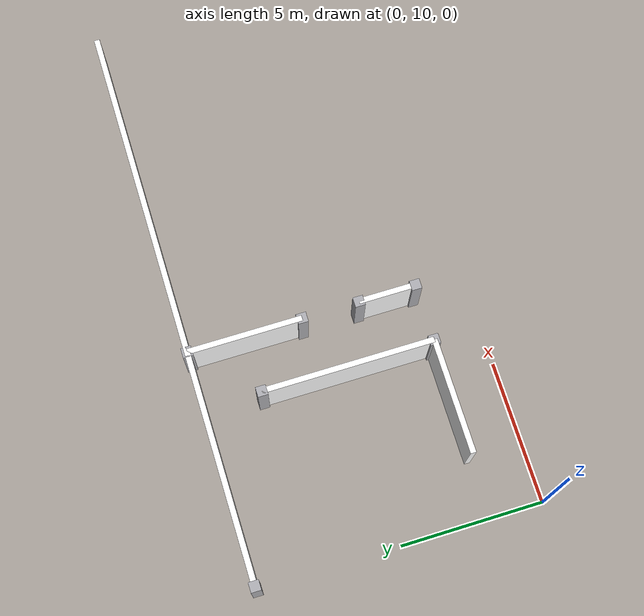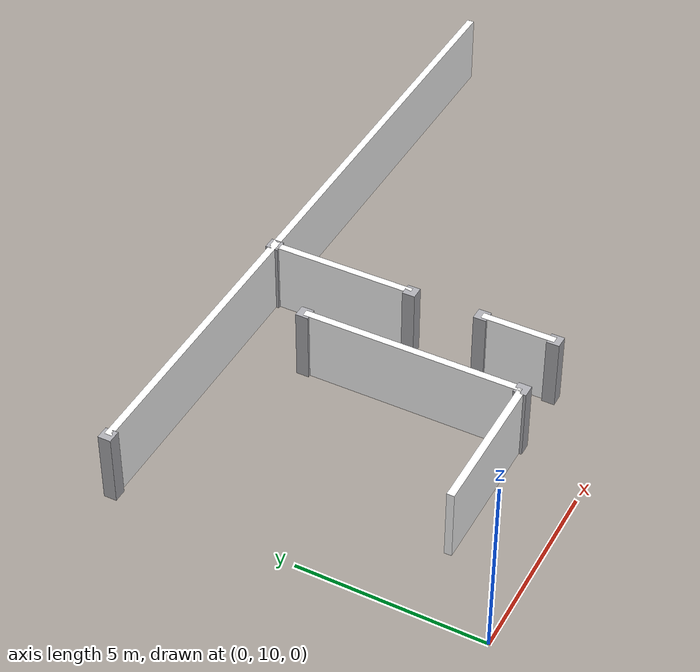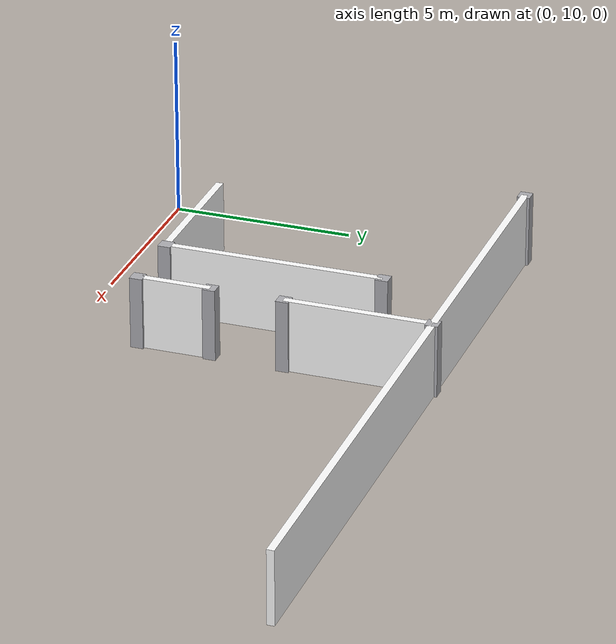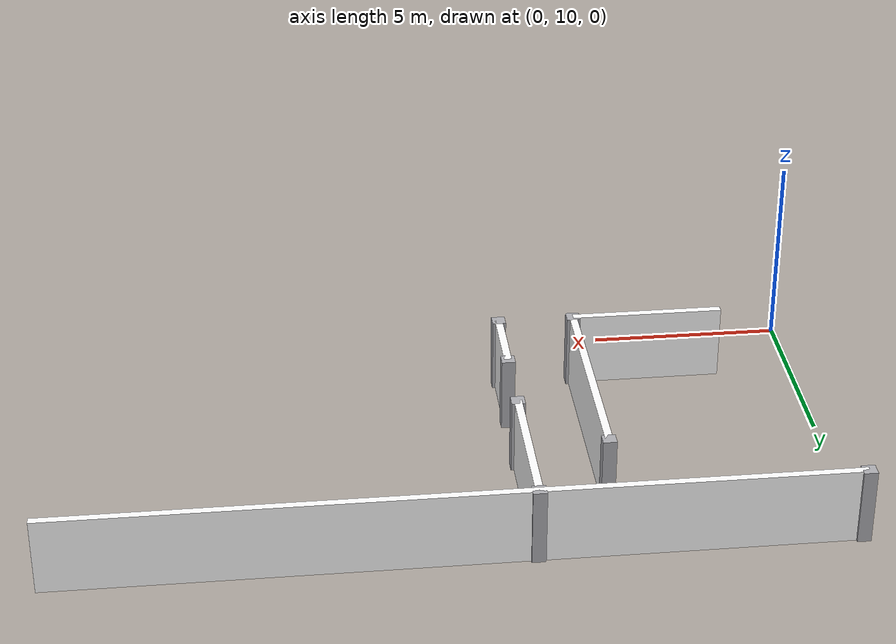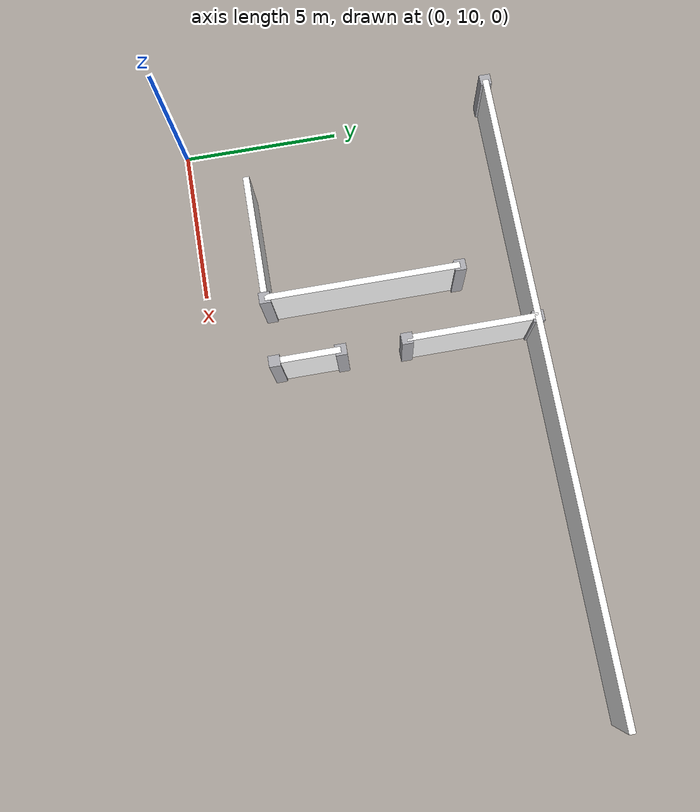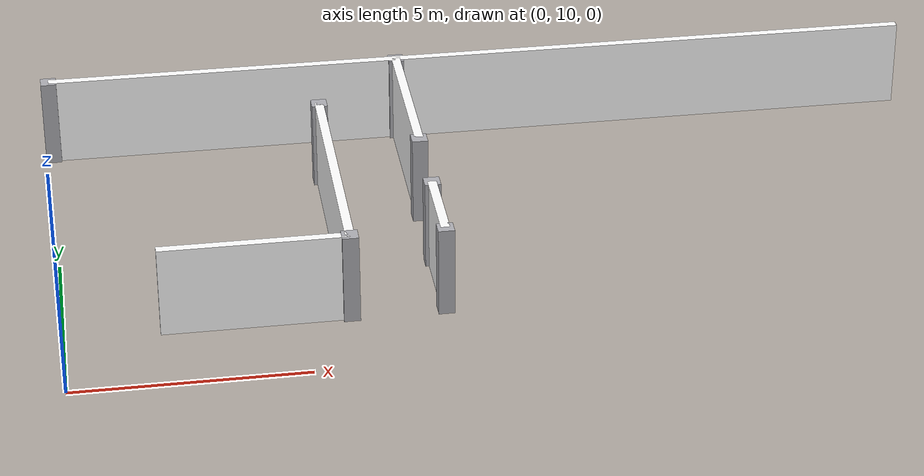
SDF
<sdf version="1.9">
 <world name="maze_world">
  <model name="wall_02">
   <static>true</static>
   <pose>10.0 20.0 1.0 0 0 0.0</pose>
   <link name="link">
    <collision name="collision"><geometry><box><size>20.0 0.2 2.0</size></box></geometry></collision>
    <visual name="visual">
     <geometry><box><size>20.0 0.2 2.0</size></box></geometry>
     <material>
      <ambient>1.0 1.0 1.0 1.0</ambient>
      <diffuse>1.0 1.0 1.0 1.0</diffuse>
      <specular>0.05 0.05 0.05 1.0</specular>
      <pbr>
       <metal>
        <albedo_map>model://bot_worlds/assets/textures/wall_tex_02.png</albedo_map>
        <roughness>0.95</roughness>
        <metalness>0.0</metalness>
       </metal>
      </pbr>
     </material>
    </visual>
   </link>
  </model>
  <model name="wall_12">
   <static>true</static>
   <pose>8.0 18.0 1.0 0 0 1.570796326795</pose>
   <link name="link">
    <collision name="collision"><geometry><box><size>4.0 0.2 2.0</size></box></geometry></collision>
    <visual name="visual">
     <geometry><box><size>4.0 0.2 2.0</size></box></geometry>
     <material>
      <ambient>1.0 1.0 1.0 1.0</ambient>
      <diffuse>1.0 1.0 1.0 1.0</diffuse>
      <specular>0.05 0.05 0.05 1.0</specular>
      <pbr>
       <metal>
        <albedo_map>model://bot_worlds/assets/textures/wall_tex_12.png</albedo_map>
        <roughness>0.95</roughness>
        <metalness>0.0</metalness>
       </metal>
      </pbr>
     </material>
    </visual>
   </link>
  </model>
  <model name="wall_13">
   <static>true</static>
   <pose>8.0 13.0 1.0 0 0 1.570796326795</pose>
   <link name="link">
    <collision name="collision"><geometry><box><size>2.0 0.2 2.0</size></box></geometry></collision>
    <visual name="visual">
     <geometry><box><size>2.0 0.2 2.0</size></box></geometry>
     <material>
      <ambient>1.0 1.0 1.0 1.0</ambient>
      <diffuse>1.0 1.0 1.0 1.0</diffuse>
      <specular>0.05 0.05 0.05 1.0</specular>
      <pbr>
       <metal>
        <albedo_map>model://bot_worlds/assets/textures/wall_tex_13.png</albedo_map>
        <roughness>0.95</roughness>
        <metalness>0.0</metalness>
       </metal>
      </pbr>
     </material>
    </visual>
   </link>
  </model>
  <model name="wall_15">
   <static>true</static>
   <pose>6.0 15.0 1.0 0 0 1.570796326795</pose>
   <link name="link">
    <collision name="collision"><geometry><box><size>6.0 0.2 2.0</size></box></geometry></collision>
    <visual name="visual">
     <geometry><box><size>6.0 0.2 2.0</size></box></geometry>
     <material>
      <ambient>1.0 1.0 1.0 1.0</ambient>
      <diffuse>1.0 1.0 1.0 1.0</diffuse>
      <specular>0.05 0.05 0.05 1.0</specular>
      <pbr>
       <metal>
        <albedo_map>model://bot_worlds/assets/textures/wall_tex_15.png</albedo_map>
        <roughness>0.95</roughness>
        <metalness>0.0</metalness>
       </metal>
      </pbr>
     </material>
    </visual>
   </link>
  </model>
  <model name="wall_16">
   <static>true</static>
   <pose>4.0 12.0 1.0 0 0 0.0</pose>
   <link name="link">
    <collision name="collision"><geometry><box><size>4.0 0.2 2.0</size></box></geometry></collision>
    <visual name="visual">
     <geometry><box><size>4.0 0.2 2.0</size></box></geometry>
     <material>
      <ambient>1.0 1.0 1.0 1.0</ambient>
      <diffuse>1.0 1.0 1.0 1.0</diffuse>
      <specular>0.05 0.05 0.05 1.0</specular>
      <pbr>
       <metal>
        <albedo_map>model://bot_worlds/assets/textures/wall_tex_16.png</albedo_map>
        <roughness>0.95</roughness>
        <metalness>0.0</metalness>
       </metal>
      </pbr>
     </material>
    </visual>
   </link>
  </model>
  <model name="post_002">
   <static>true</static>
   <pose>0.0 20.0 1.0 0 0 0</pose>
   <link name="link">
    <collision name="collision"><geometry><box><size>0.35 0.35 2.0</size></box></geometry></collision>
    <visual name="visual">
     <geometry><box><size>0.35 0.35 2.0</size></box></geometry>
     <material>
      <ambient>0.55 0.55 0.57 1.0</ambient>
      <diffuse>0.68 0.68 0.70 1.0</diffuse>
      <specular>0.03 0.03 0.03 1.0</specular>
      <pbr><metal><metalness>0.25</metalness><roughness>0.95</roughness></metal></pbr>
     </material>
    </visual>
   </link>
  </model>
  <model name="post_009">
   <static>true</static>
   <pose>6.0 12.0 1.0 0 0 0</pose>
   <link name="link">
    <collision name="collision"><geometry><box><size>0.35 0.35 2.0</size></box></geometry></collision>
    <visual name="visual">
     <geometry><box><size>0.35 0.35 2.0</size></box></geometry>
     <material>
      <ambient>0.55 0.55 0.57 1.0</ambient>
      <diffuse>0.68 0.68 0.70 1.0</diffuse>
      <specular>0.03 0.03 0.03 1.0</specular>
      <pbr><metal><metalness>0.25</metalness><roughness>0.95</roughness></metal></pbr>
     </material>
    </visual>
   </link>
  </model>
  <model name="post_010">
   <static>true</static>
   <pose>6.0 18.0 1.0 0 0 0</pose>
   <link name="link">
    <collision name="collision"><geometry><box><size>0.35 0.35 2.0</size></box></geometry></collision>
    <visual name="visual">
     <geometry><box><size>0.35 0.35 2.0</size></box></geometry>
     <material>
      <ambient>0.55 0.55 0.57 1.0</ambient>
      <diffuse>0.68 0.68 0.70 1.0</diffuse>
      <specular>0.03 0.03 0.03 1.0</specular>
      <pbr><metal><metalness>0.25</metalness><roughness>0.95</roughness></metal></pbr>
     </material>
    </visual>
   </link>
  </model>
  <model name="post_011">
   <static>true</static>
   <pose>8.0 12.0 1.0 0 0 0</pose>
   <link name="link">
    <collision name="collision"><geometry><box><size>0.35 0.35 2.0</size></box></geometry></collision>
    <visual name="visual">
     <geometry><box><size>0.35 0.35 2.0</size></box></geometry>
     <material>
      <ambient>0.55 0.55 0.57 1.0</ambient>
      <diffuse>0.68 0.68 0.70 1.0</diffuse>
      <specular>0.03 0.03 0.03 1.0</specular>
      <pbr><metal><metalness>0.25</metalness><roughness>0.95</roughness></metal></pbr>
     </material>
    </visual>
   </link>
  </model>
  <model name="post_012">
   <static>true</static>
   <pose>8.0 14.0 1.0 0 0 0</pose>
   <link name="link">
    <collision name="collision"><geometry><box><size>0.35 0.35 2.0</size></box></geometry></collision>
    <visual name="visual">
     <geometry><box><size>0.35 0.35 2.0</size></box></geometry>
     <material>
      <ambient>0.55 0.55 0.57 1.0</ambient>
      <diffuse>0.68 0.68 0.70 1.0</diffuse>
      <specular>0.03 0.03 0.03 1.0</specular>
      <pbr><metal><metalness>0.25</metalness><roughness>0.95</roughness></metal></pbr>
     </material>
    </visual>
   </link>
  </model>
  <model name="post_013">
   <static>true</static>
   <pose>8.0 16.0 1.0 0 0 0</pose>
   <link name="link">
    <collision name="collision"><geometry><box><size>0.35 0.35 2.0</size></box></geometry></collision>
    <visual name="visual">
     <geometry><box><size>0.35 0.35 2.0</size></box></geometry>
     <material>
      <ambient>0.55 0.55 0.57 1.0</ambient>
      <diffuse>0.68 0.68 0.70 1.0</diffuse>
      <specular>0.03 0.03 0.03 1.0</specular>
      <pbr><metal><metalness>0.25</metalness><roughness>0.95</roughness></metal></pbr>
     </material>
    </visual>
   </link>
  </model>
  <model name="post_014">
   <static>true</static>
   <pose>8.0 20.0 1.0 0 0 0</pose>
   <link name="link">
    <collision name="collision"><geometry><box><size>0.35 0.35 2.0</size></box></geometry></collision>
    <visual name="visual">
     <geometry><box><size>0.35 0.35 2.0</size></box></geometry>
     <material>
      <ambient>0.55 0.55 0.57 1.0</ambient>
      <diffuse>0.68 0.68 0.70 1.0</diffuse>
      <specular>0.03 0.03 0.03 1.0</specular>
      <pbr><metal><metalness>0.25</metalness><roughness>0.95</roughness></metal></pbr>
     </material>
    </visual>
   </link>
  </model>
 </world>
</sdf>
